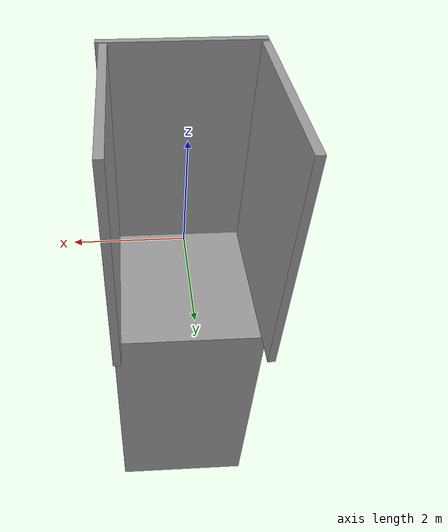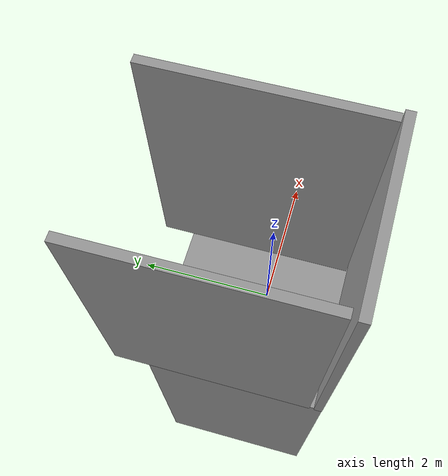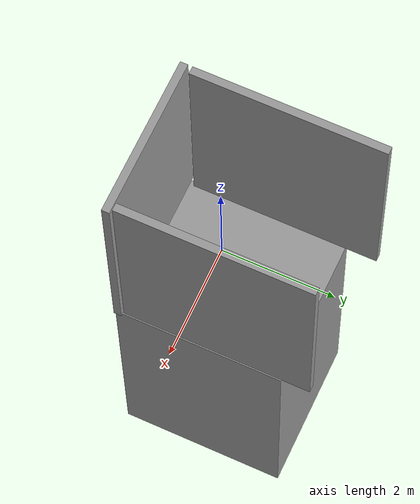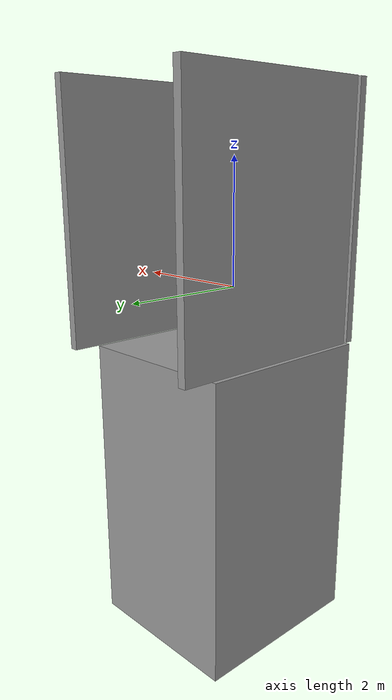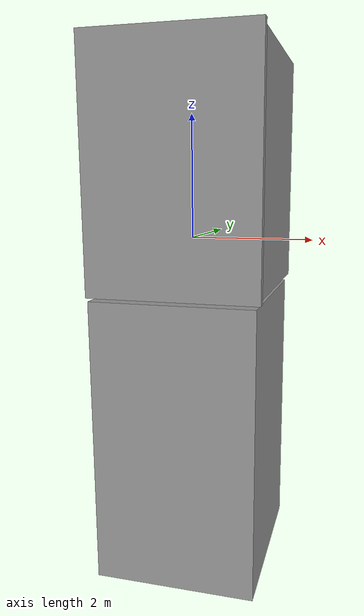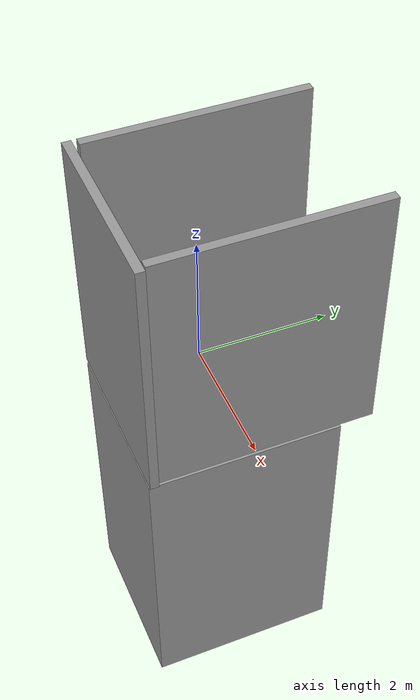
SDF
<?xml version='1.0'?>
<sdf version='1.7'>
  <model name='beranda2'>
    <link name='link_0'>
      <inertial>
        <mass>38.6468</mass>
        <inertia>
          <ixx>103.012</ixx>
          <ixy>0</ixy>
          <ixz>0</ixz>
          <iyy>97.4958</iyy>
          <iyz>0</iyz>
          <izz>52.1636</izz>
        </inertia>
        <pose>0 0 0 0 -0 0</pose>
      </inertial>
      <pose>0.0068 0.174453 -3.32162 0 -0 0</pose>
      <gravity>0</gravity>
      <self_collide>0</self_collide>
      <kinematic>0</kinematic>
      <enable_wind>0</enable_wind>
      <visual name='visual'>
        <pose>0 0 0 0 -0 0</pose>
        <geometry>
          <box>
            <size>2.69111 2.99248 4.79904</size>
          </box>
        </geometry>
        <material>
          <lighting>1</lighting>
          <script>
            <uri>file://media/materials/scripts/gazebo.material</uri>
            <name>Gazebo/Grey</name>
          </script>
          <shader type='pixel'>
            <normal_map>__default__</normal_map>
          </shader>
        </material>
        <transparency>0</transparency>
        <cast_shadows>1</cast_shadows>
      </visual>
      <collision name='collision'>
        <laser_retro>0</laser_retro>
        <max_contacts>10</max_contacts>
        <pose>0 0 0 0 -0 0</pose>
        <geometry>
          <box>
            <size>2.69111 2.99248 4.79904</size>
          </box>
        </geometry>
        <surface>
          <friction>
            <ode>
              <mu>1</mu>
              <mu2>1</mu2>
              <fdir1>0 0 0</fdir1>
              <slip1>0</slip1>
              <slip2>0</slip2>
            </ode>
            <torsional>
              <coefficient>1</coefficient>
              <patch_radius>0</patch_radius>
              <surface_radius>0</surface_radius>
              <use_patch_radius>1</use_patch_radius>
              <ode>
                <slip>0</slip>
              </ode>
            </torsional>
          </friction>
          <bounce>
            <restitution_coefficient>0</restitution_coefficient>
            <threshold>1e+06</threshold>
          </bounce>
          <contact>
            <collide_without_contact>0</collide_without_contact>
            <collide_without_contact_bitmask>1</collide_without_contact_bitmask>
            <collide_bitmask>1</collide_bitmask>
            <ode>
              <soft_cfm>0</soft_cfm>
              <soft_erp>0.2</soft_erp>
              <kp>1e+13</kp>
              <kd>1</kd>
              <max_vel>0.01</max_vel>
              <min_depth>0</min_depth>
            </ode>
            <bullet>
              <split_impulse>1</split_impulse>
              <split_impulse_penetration_threshold>-0.01</split_impulse_penetration_threshold>
              <soft_cfm>0</soft_cfm>
              <soft_erp>0.2</soft_erp>
              <kp>1e+13</kp>
              <kd>1</kd>
            </bullet>
          </contact>
        </surface>
      </collision>
    </link>
    <link name='link_1'>
      <inertial>
        <mass>1.80487</mass>
        <inertia>
          <ixx>4.04097</ixx>
          <ixy>0</ixy>
          <ixz>0</ixz>
          <iyy>2.35619</iyy>
          <iyz>0</iyz>
          <izz>1.69035</izz>
        </inertia>
        <pose>0 0 0 0 -0 0</pose>
      </inertial>
      <pose>1.28192 0.507891 1.10721 0 -0 0</pose>
      <visual name='visual'>
        <pose>0 0 0 0 -0 0</pose>
        <geometry>
          <box>
            <size>0.136062 3.34964 3.95563</size>
          </box>
        </geometry>
        <material>
          <lighting>1</lighting>
          <script>
            <uri>file://media/materials/scripts/gazebo.material</uri>
            <name>Gazebo/Grey</name>
          </script>
          <shader type='pixel'/>
        </material>
        <transparency>0</transparency>
        <cast_shadows>1</cast_shadows>
      </visual>
      <collision name='collision'>
        <laser_retro>0</laser_retro>
        <max_contacts>10</max_contacts>
        <pose>0 0 0 0 -0 0</pose>
        <geometry>
          <box>
            <size>0.136062 3.34964 3.95563</size>
          </box>
        </geometry>
        <surface>
          <friction>
            <ode>
              <mu>1</mu>
              <mu2>1</mu2>
              <fdir1>0 0 0</fdir1>
              <slip1>0</slip1>
              <slip2>0</slip2>
            </ode>
            <torsional>
              <coefficient>1</coefficient>
              <patch_radius>0</patch_radius>
              <surface_radius>0</surface_radius>
              <use_patch_radius>1</use_patch_radius>
              <ode>
                <slip>0</slip>
              </ode>
            </torsional>
          </friction>
          <bounce>
            <restitution_coefficient>0</restitution_coefficient>
            <threshold>1e+06</threshold>
          </bounce>
          <contact>
            <collide_without_contact>0</collide_without_contact>
            <collide_without_contact_bitmask>1</collide_without_contact_bitmask>
            <collide_bitmask>1</collide_bitmask>
            <ode>
              <soft_cfm>0</soft_cfm>
              <soft_erp>0.2</soft_erp>
              <kp>1e+13</kp>
              <kd>1</kd>
              <max_vel>0.01</max_vel>
              <min_depth>0</min_depth>
            </ode>
            <bullet>
              <split_impulse>1</split_impulse>
              <split_impulse_penetration_threshold>-0.01</split_impulse_penetration_threshold>
              <soft_cfm>0</soft_cfm>
              <soft_erp>0.2</soft_erp>
              <kp>1e+13</kp>
              <kd>1</kd>
            </bullet>
          </contact>
        </surface>
      </collision>
    </link>
    <link name='link_1_clone'>
      <inertial>
        <mass>10000.8</mass>
        <inertia>
          <ixx>22391</ixx>
          <ixy>0</ixy>
          <ixz>0</ixz>
          <iyy>13055.7</iyy>
          <iyz>0</iyz>
          <izz>9366.25</izz>
        </inertia>
        <pose>0 0 0 0 -0 0</pose>
      </inertial>
      <pose>-1.30753 0.567782 1.10721 0 -0 0</pose>
      <gravity>0</gravity>
      <self_collide>0</self_collide>
      <kinematic>0</kinematic>
      <enable_wind>0</enable_wind>
      <visual name='visual'>
        <pose>0 0 0 0 -0 0</pose>
        <geometry>
          <box>
            <size>0.136062 3.34964 3.95563</size>
          </box>
        </geometry>
        <material>
          <lighting>1</lighting>
          <script>
            <uri>file://media/materials/scripts/gazebo.material</uri>
            <name>Gazebo/Grey</name>
          </script>
          <shader type='pixel'>
            <normal_map>__default__</normal_map>
          </shader>
        </material>
        <transparency>0</transparency>
        <cast_shadows>1</cast_shadows>
      </visual>
      <collision name='collision'>
        <laser_retro>0</laser_retro>
        <max_contacts>10</max_contacts>
        <pose>0 0 0 0 -0 0</pose>
        <geometry>
          <box>
            <size>0.136062 3.34964 3.95563</size>
          </box>
        </geometry>
        <surface>
          <friction>
            <ode>
              <mu>1</mu>
              <mu2>1</mu2>
              <fdir1>0 0 0</fdir1>
              <slip1>0</slip1>
              <slip2>0</slip2>
            </ode>
            <torsional>
              <coefficient>1</coefficient>
              <patch_radius>0</patch_radius>
              <surface_radius>0</surface_radius>
              <use_patch_radius>1</use_patch_radius>
              <ode>
                <slip>0</slip>
              </ode>
            </torsional>
          </friction>
          <bounce>
            <restitution_coefficient>0</restitution_coefficient>
            <threshold>1e+06</threshold>
          </bounce>
          <contact>
            <collide_without_contact>0</collide_without_contact>
            <collide_without_contact_bitmask>1</collide_without_contact_bitmask>
            <collide_bitmask>1</collide_bitmask>
            <ode>
              <soft_cfm>0</soft_cfm>
              <soft_erp>0.2</soft_erp>
              <kp>1e+13</kp>
              <kd>1</kd>
              <max_vel>0.01</max_vel>
              <min_depth>0</min_depth>
            </ode>
            <bullet>
              <split_impulse>1</split_impulse>
              <split_impulse_penetration_threshold>-0.01</split_impulse_penetration_threshold>
              <soft_cfm>0</soft_cfm>
              <soft_erp>0.2</soft_erp>
              <kp>1e+13</kp>
              <kd>1</kd>
            </bullet>
          </contact>
        </surface>
      </collision>
    </link>
    <link name='link_1_clone_0'>
      <inertial>
        <mass>10000</mass>
        <inertia>
          <ixx>19519.1</ixx>
          <ixy>0</ixy>
          <ixz>0</ixz>
          <iyy>13054.6</iyy>
          <iyz>0</iyz>
          <izz>6495.32</izz>
        </inertia>
        <pose>0 0 0 0 -0 0</pose>
      </inertial>
      <pose>0.01881 -1.25013 1.10721 0 0 -1.57174</pose>
      <gravity>0</gravity>
      <self_collide>0</self_collide>
      <kinematic>0</kinematic>
      <enable_wind>0</enable_wind>
      <visual name='visual'>
        <pose>0 0 0 0 -0 0</pose>
        <geometry>
          <box>
            <size>0.136062 2.78852 3.95563</size>
          </box>
        </geometry>
        <material>
          <lighting>1</lighting>
          <script>
            <uri>file://media/materials/scripts/gazebo.material</uri>
            <name>Gazebo/Grey</name>
          </script>
          <shader type='pixel'>
            <normal_map>__default__</normal_map>
          </shader>
        </material>
        <transparency>0</transparency>
        <cast_shadows>1</cast_shadows>
      </visual>
      <collision name='collision'>
        <laser_retro>0</laser_retro>
        <max_contacts>10</max_contacts>
        <pose>0 0 0 0 -0 0</pose>
        <geometry>
          <box>
            <size>0.136062 2.78852 3.95563</size>
          </box>
        </geometry>
        <surface>
          <friction>
            <ode>
              <mu>1</mu>
              <mu2>1</mu2>
              <fdir1>0 0 0</fdir1>
              <slip1>0</slip1>
              <slip2>0</slip2>
            </ode>
            <torsional>
              <coefficient>1</coefficient>
              <patch_radius>0</patch_radius>
              <surface_radius>0</surface_radius>
              <use_patch_radius>1</use_patch_radius>
              <ode>
                <slip>0</slip>
              </ode>
            </torsional>
          </friction>
          <bounce>
            <restitution_coefficient>0</restitution_coefficient>
            <threshold>1e+06</threshold>
          </bounce>
          <contact>
            <collide_without_contact>0</collide_without_contact>
            <collide_without_contact_bitmask>1</collide_without_contact_bitmask>
            <collide_bitmask>1</collide_bitmask>
            <ode>
              <soft_cfm>0</soft_cfm>
              <soft_erp>0.2</soft_erp>
              <kp>1e+13</kp>
              <kd>1</kd>
              <max_vel>0.01</max_vel>
              <min_depth>0</min_depth>
            </ode>
            <bullet>
              <split_impulse>1</split_impulse>
              <split_impulse_penetration_threshold>-0.01</split_impulse_penetration_threshold>
              <soft_cfm>0</soft_cfm>
              <soft_erp>0.2</soft_erp>
              <kp>1e+13</kp>
              <kd>1</kd>
            </bullet>
          </contact>
        </surface>
      </collision>
    </link>
    <static>0</static>
    <allow_auto_disable>1</allow_auto_disable>
  </model>
</sdf>
